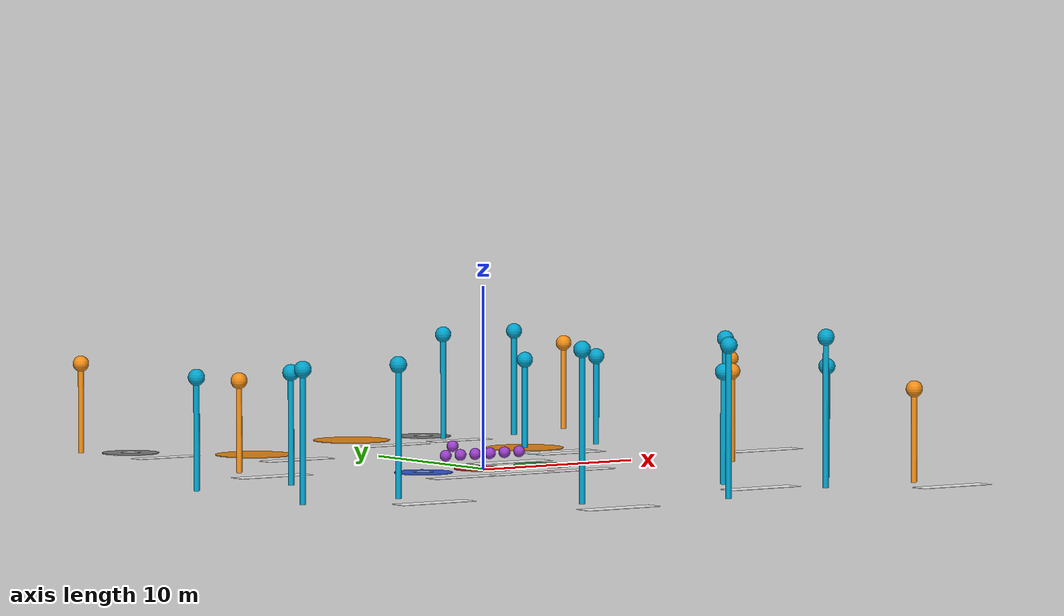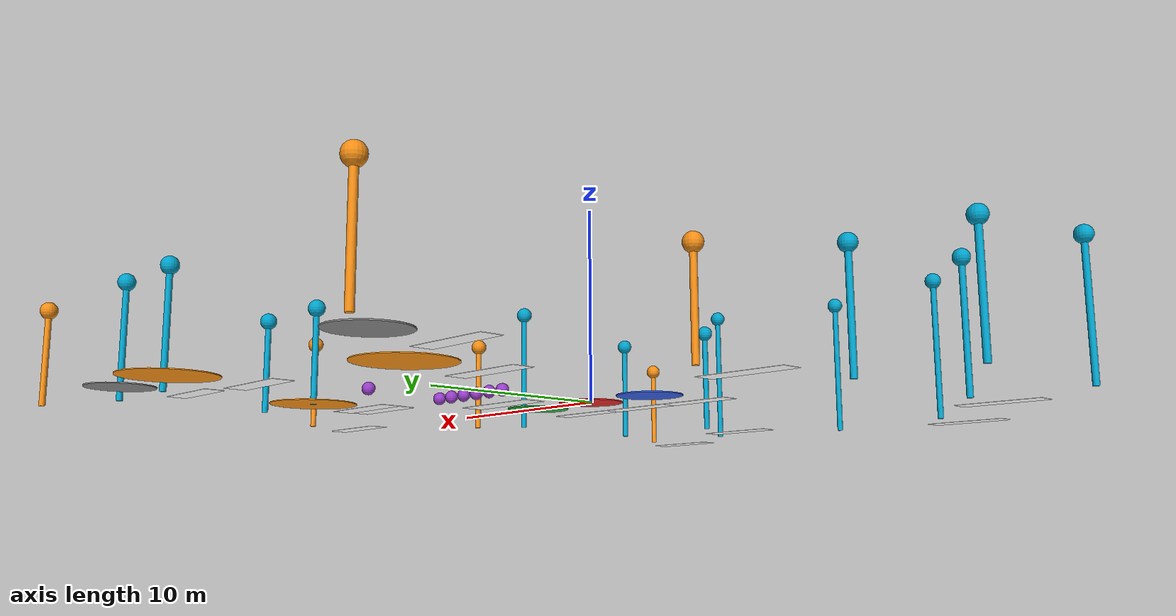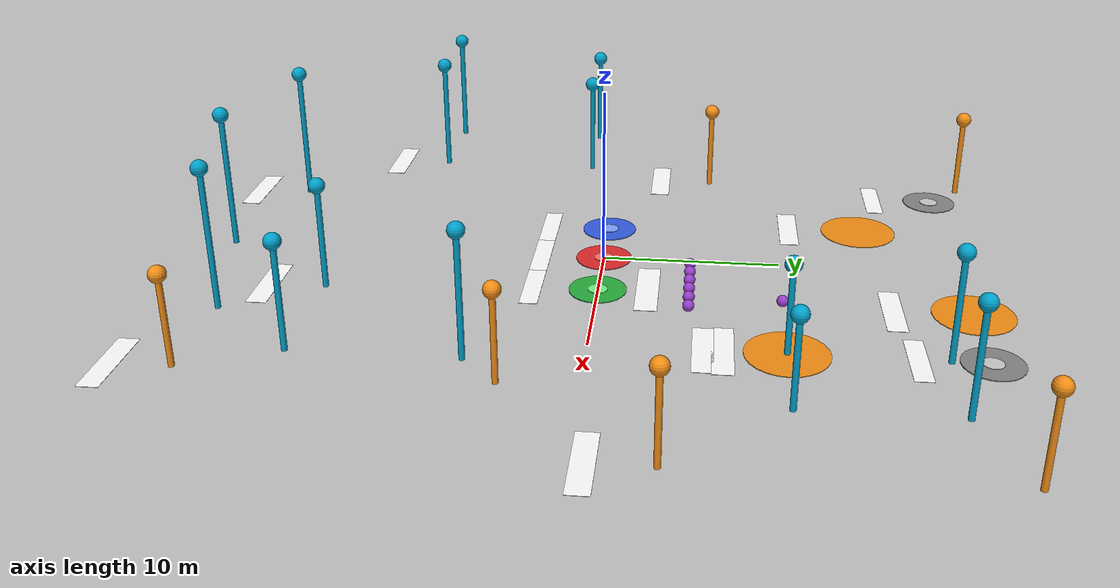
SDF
<?xml version="1.0" ?>
<!-- GENERATED by scripts/gen_mission_labels.py - do not edit by hand.
     Regenerate after changing config/mission.yaml or config/conf.yaml. -->
<sdf version="1.8">
  <model name="mission_labels">
    <static>true</static>
    <link name="pad_drone0">
      <pose>0.000 0.000 0.030 0 0 0</pose>
      <visual name="v">
        <cast_shadows>false</cast_shadows>
        <geometry><cylinder><radius>1.600</radius><length>0.050</length></cylinder></geometry>
        <material>
          <ambient>0.863 0.157 0.157 1.00</ambient>
          <diffuse>0.863 0.157 0.157 1.00</diffuse>
          <emissive>0.302 0.055 0.055 1</emissive>
        </material>
      </visual>
    </link>
    <link name="pad_in_drone0">
      <pose>0.000 0.000 0.050 0 0 0</pose>
      <visual name="v">
        <cast_shadows>false</cast_shadows>
        <geometry><cylinder><radius>0.550</radius><length>0.060</length></cylinder></geometry>
        <material>
          <ambient>1.000 0.431 0.431 1.00</ambient>
          <diffuse>1.000 0.431 0.431 1.00</diffuse>
          <emissive>0.350 0.151 0.151 1</emissive>
        </material>
      </visual>
    </link>
    <link name="lbl_base_drone0">
      <pose>0.000 -3.600 0.030 0 0 0.0000</pose>
      <visual name="v">
        <cast_shadows>false</cast_shadows>
        <geometry><box><size>4.000 1.000 0.02</size></box></geometry>
        <material>
          <ambient>1 1 1 1</ambient><diffuse>1 1 1 1</diffuse>
          <pbr><metal>
            <albedo_map>model://mission_labels/materials/textures/base_drone0.png</albedo_map>
            <metalness>0.0</metalness><roughness>1.0</roughness>
          </metal></pbr>
        </material>
      </visual>
    </link>
    <link name="pad_drone1">
      <pose>4.000 0.000 0.030 0 0 0</pose>
      <visual name="v">
        <cast_shadows>false</cast_shadows>
        <geometry><cylinder><radius>1.600</radius><length>0.050</length></cylinder></geometry>
        <material>
          <ambient>0.157 0.667 0.235 1.00</ambient>
          <diffuse>0.157 0.667 0.235 1.00</diffuse>
          <emissive>0.055 0.233 0.082 1</emissive>
        </material>
      </visual>
    </link>
    <link name="pad_in_drone1">
      <pose>4.000 0.000 0.050 0 0 0</pose>
      <visual name="v">
        <cast_shadows>false</cast_shadows>
        <geometry><cylinder><radius>0.550</radius><length>0.060</length></cylinder></geometry>
        <material>
          <ambient>0.431 0.941 0.510 1.00</ambient>
          <diffuse>0.431 0.941 0.510 1.00</diffuse>
          <emissive>0.151 0.329 0.178 1</emissive>
        </material>
      </visual>
    </link>
    <link name="lbl_base_drone1">
      <pose>4.000 -3.600 0.030 0 0 0.0000</pose>
      <visual name="v">
        <cast_shadows>false</cast_shadows>
        <geometry><box><size>4.000 1.000 0.02</size></box></geometry>
        <material>
          <ambient>1 1 1 1</ambient><diffuse>1 1 1 1</diffuse>
          <pbr><metal>
            <albedo_map>model://mission_labels/materials/textures/base_drone1.png</albedo_map>
            <metalness>0.0</metalness><roughness>1.0</roughness>
          </metal></pbr>
        </material>
      </visual>
    </link>
    <link name="pad_drone2">
      <pose>-4.000 0.000 0.030 0 0 0</pose>
      <visual name="v">
        <cast_shadows>false</cast_shadows>
        <geometry><cylinder><radius>1.600</radius><length>0.050</length></cylinder></geometry>
        <material>
          <ambient>0.196 0.353 0.863 1.00</ambient>
          <diffuse>0.196 0.353 0.863 1.00</diffuse>
          <emissive>0.069 0.124 0.302 1</emissive>
        </material>
      </visual>
    </link>
    <link name="pad_in_drone2">
      <pose>-4.000 0.000 0.050 0 0 0</pose>
      <visual name="v">
        <cast_shadows>false</cast_shadows>
        <geometry><cylinder><radius>0.550</radius><length>0.060</length></cylinder></geometry>
        <material>
          <ambient>0.471 0.627 1.000 1.00</ambient>
          <diffuse>0.471 0.627 1.000 1.00</diffuse>
          <emissive>0.165 0.220 0.350 1</emissive>
        </material>
      </visual>
    </link>
    <link name="lbl_base_drone2">
      <pose>-4.000 -3.600 0.030 0 0 0.0000</pose>
      <visual name="v">
        <cast_shadows>false</cast_shadows>
        <geometry><box><size>4.000 1.000 0.02</size></box></geometry>
        <material>
          <ambient>1 1 1 1</ambient><diffuse>1 1 1 1</diffuse>
          <pbr><metal>
            <albedo_map>model://mission_labels/materials/textures/base_drone2.png</albedo_map>
            <metalness>0.0</metalness><roughness>1.0</roughness>
          </metal></pbr>
        </material>
      </visual>
    </link>
    <link name="pad_4">
      <pose>-10.000 20.000 0.030 0 0 0</pose>
      <visual name="v">
        <cast_shadows>false</cast_shadows>
        <geometry><cylinder><radius>1.600</radius><length>0.050</length></cylinder></geometry>
        <material>
          <ambient>0.510 0.510 0.510 1.00</ambient>
          <diffuse>0.510 0.510 0.510 1.00</diffuse>
          <emissive>0.178 0.178 0.178 1</emissive>
        </material>
      </visual>
    </link>
    <link name="pad_in_4">
      <pose>-10.000 20.000 0.050 0 0 0</pose>
      <visual name="v">
        <cast_shadows>false</cast_shadows>
        <geometry><cylinder><radius>0.550</radius><length>0.060</length></cylinder></geometry>
        <material>
          <ambient>0.784 0.784 0.784 1.00</ambient>
          <diffuse>0.784 0.784 0.784 1.00</diffuse>
          <emissive>0.275 0.275 0.275 1</emissive>
        </material>
      </visual>
    </link>
    <link name="lbl_base_4">
      <pose>-10.000 16.400 0.030 0 0 0.0000</pose>
      <visual name="v">
        <cast_shadows>false</cast_shadows>
        <geometry><box><size>4.000 1.000 0.02</size></box></geometry>
        <material>
          <ambient>1 1 1 1</ambient><diffuse>1 1 1 1</diffuse>
          <pbr><metal>
            <albedo_map>model://mission_labels/materials/textures/base_4.png</albedo_map>
            <metalness>0.0</metalness><roughness>1.0</roughness>
          </metal></pbr>
        </material>
      </visual>
    </link>
    <link name="pad_5">
      <pose>10.000 20.000 0.030 0 0 0</pose>
      <visual name="v">
        <cast_shadows>false</cast_shadows>
        <geometry><cylinder><radius>1.600</radius><length>0.050</length></cylinder></geometry>
        <material>
          <ambient>0.510 0.510 0.510 1.00</ambient>
          <diffuse>0.510 0.510 0.510 1.00</diffuse>
          <emissive>0.178 0.178 0.178 1</emissive>
        </material>
      </visual>
    </link>
    <link name="pad_in_5">
      <pose>10.000 20.000 0.050 0 0 0</pose>
      <visual name="v">
        <cast_shadows>false</cast_shadows>
        <geometry><cylinder><radius>0.550</radius><length>0.060</length></cylinder></geometry>
        <material>
          <ambient>0.784 0.784 0.784 1.00</ambient>
          <diffuse>0.784 0.784 0.784 1.00</diffuse>
          <emissive>0.275 0.275 0.275 1</emissive>
        </material>
      </visual>
    </link>
    <link name="lbl_base_5">
      <pose>10.000 16.400 0.030 0 0 0.0000</pose>
      <visual name="v">
        <cast_shadows>false</cast_shadows>
        <geometry><box><size>4.000 1.000 0.02</size></box></geometry>
        <material>
          <ambient>1 1 1 1</ambient><diffuse>1 1 1 1</diffuse>
          <pbr><metal>
            <albedo_map>model://mission_labels/materials/textures/base_5.png</albedo_map>
            <metalness>0.0</metalness><roughness>1.0</roughness>
          </metal></pbr>
        </material>
      </visual>
    </link>
    <link name="ring_human_target_1">
      <pose>10.000 10.000 0.030 0 0 0</pose>
      <visual name="v">
        <cast_shadows>false</cast_shadows>
        <geometry><cylinder><radius>2.200</radius><length>0.040</length></cylinder></geometry>
        <material>
          <ambient>0.941 0.549 0.078 1.00</ambient>
          <diffuse>0.941 0.549 0.078 1.00</diffuse>
          <emissive>0.329 0.192 0.027 1</emissive>
        </material>
      </visual>
    </link>
    <link name="l_human_target_1">
      <pose>10.000 5.800 0.030 0 0 0.0000</pose>
      <visual name="v">
        <cast_shadows>false</cast_shadows>
        <geometry><box><size>4.400 1.100 0.02</size></box></geometry>
        <material>
          <ambient>1 1 1 1</ambient><diffuse>1 1 1 1</diffuse>
          <pbr><metal>
            <albedo_map>model://mission_labels/materials/textures/lbl_human_target_1.png</albedo_map>
            <metalness>0.0</metalness><roughness>1.0</roughness>
          </metal></pbr>
        </material>
      </visual>
    </link>
    <link name="ring_human_target_2">
      <pose>-5.000 15.000 0.030 0 0 0</pose>
      <visual name="v">
        <cast_shadows>false</cast_shadows>
        <geometry><cylinder><radius>2.200</radius><length>0.040</length></cylinder></geometry>
        <material>
          <ambient>0.941 0.549 0.078 1.00</ambient>
          <diffuse>0.941 0.549 0.078 1.00</diffuse>
          <emissive>0.329 0.192 0.027 1</emissive>
        </material>
      </visual>
    </link>
    <link name="l_human_target_2">
      <pose>-5.000 10.800 0.030 0 0 0.0000</pose>
      <visual name="v">
        <cast_shadows>false</cast_shadows>
        <geometry><box><size>4.400 1.100 0.02</size></box></geometry>
        <material>
          <ambient>1 1 1 1</ambient><diffuse>1 1 1 1</diffuse>
          <pbr><metal>
            <albedo_map>model://mission_labels/materials/textures/lbl_human_target_2.png</albedo_map>
            <metalness>0.0</metalness><roughness>1.0</roughness>
          </metal></pbr>
        </material>
      </visual>
    </link>
    <link name="ring_human_target_3">
      <pose>5.000 20.000 0.030 0 0 0</pose>
      <visual name="v">
        <cast_shadows>false</cast_shadows>
        <geometry><cylinder><radius>2.200</radius><length>0.040</length></cylinder></geometry>
        <material>
          <ambient>0.941 0.549 0.078 1.00</ambient>
          <diffuse>0.941 0.549 0.078 1.00</diffuse>
          <emissive>0.329 0.192 0.027 1</emissive>
        </material>
      </visual>
    </link>
    <link name="l_human_target_3">
      <pose>5.000 15.800 0.030 0 0 0.0000</pose>
      <visual name="v">
        <cast_shadows>false</cast_shadows>
        <geometry><box><size>4.400 1.100 0.02</size></box></geometry>
        <material>
          <ambient>1 1 1 1</ambient><diffuse>1 1 1 1</diffuse>
          <pbr><metal>
            <albedo_map>model://mission_labels/materials/textures/lbl_human_target_3.png</albedo_map>
            <metalness>0.0</metalness><roughness>1.0</roughness>
          </metal></pbr>
        </material>
      </visual>
    </link>
    <link name="tool_hammer">
      <pose>5.000 10.000 0.350 0 0 0</pose>
      <visual name="v">
        <cast_shadows>false</cast_shadows>
        <geometry><sphere><radius>0.320</radius></sphere></geometry>
        <material>
          <ambient>0.588 0.235 0.784 1.00</ambient>
          <diffuse>0.588 0.235 0.784 1.00</diffuse>
          <emissive>0.206 0.082 0.275 1</emissive>
        </material>
      </visual>
    </link>
    <link name="tool_wrench">
      <pose>1.000 5.000 0.350 0 0 0</pose>
      <visual name="v">
        <cast_shadows>false</cast_shadows>
        <geometry><sphere><radius>0.320</radius></sphere></geometry>
        <material>
          <ambient>0.588 0.235 0.784 1.00</ambient>
          <diffuse>0.588 0.235 0.784 1.00</diffuse>
          <emissive>0.206 0.082 0.275 1</emissive>
        </material>
      </visual>
    </link>
    <link name="tool_allen_wrench">
      <pose>2.000 5.000 0.350 0 0 0</pose>
      <visual name="v">
        <cast_shadows>false</cast_shadows>
        <geometry><sphere><radius>0.320</radius></sphere></geometry>
        <material>
          <ambient>0.588 0.235 0.784 1.00</ambient>
          <diffuse>0.588 0.235 0.784 1.00</diffuse>
          <emissive>0.206 0.082 0.275 1</emissive>
        </material>
      </visual>
    </link>
    <link name="tool_fixed_wrench">
      <pose>3.000 5.000 0.350 0 0 0</pose>
      <visual name="v">
        <cast_shadows>false</cast_shadows>
        <geometry><sphere><radius>0.320</radius></sphere></geometry>
        <material>
          <ambient>0.588 0.235 0.784 1.00</ambient>
          <diffuse>0.588 0.235 0.784 1.00</diffuse>
          <emissive>0.206 0.082 0.275 1</emissive>
        </material>
      </visual>
    </link>
    <link name="tool_multimeter">
      <pose>4.000 5.000 0.350 0 0 0</pose>
      <visual name="v">
        <cast_shadows>false</cast_shadows>
        <geometry><sphere><radius>0.320</radius></sphere></geometry>
        <material>
          <ambient>0.588 0.235 0.784 1.00</ambient>
          <diffuse>0.588 0.235 0.784 1.00</diffuse>
          <emissive>0.206 0.082 0.275 1</emissive>
        </material>
      </visual>
    </link>
    <link name="tool_pliers">
      <pose>5.000 5.000 0.350 0 0 0</pose>
      <visual name="v">
        <cast_shadows>false</cast_shadows>
        <geometry><sphere><radius>0.320</radius></sphere></geometry>
        <material>
          <ambient>0.588 0.235 0.784 1.00</ambient>
          <diffuse>0.588 0.235 0.784 1.00</diffuse>
          <emissive>0.206 0.082 0.275 1</emissive>
        </material>
      </visual>
    </link>
    <link name="tool_tweezers">
      <pose>6.000 5.000 0.350 0 0 0</pose>
      <visual name="v">
        <cast_shadows>false</cast_shadows>
        <geometry><sphere><radius>0.320</radius></sphere></geometry>
        <material>
          <ambient>0.588 0.235 0.784 1.00</ambient>
          <diffuse>0.588 0.235 0.784 1.00</diffuse>
          <emissive>0.206 0.082 0.275 1</emissive>
        </material>
      </visual>
    </link>
    <link name="l_tools">
      <pose>3.714 2.714 0.030 0 0 0.0000</pose>
      <visual name="v">
        <cast_shadows>false</cast_shadows>
        <geometry><box><size>5.000 1.250 0.02</size></box></geometry>
        <material>
          <ambient>1 1 1 1</ambient><diffuse>1 1 1 1</diffuse>
          <pbr><metal>
            <albedo_map>model://mission_labels/materials/textures/lbl_tools.png</albedo_map>
            <metalness>0.0</metalness><roughness>1.0</roughness>
          </metal></pbr>
        </material>
      </visual>
    </link>
    <link name="post_t_1_0">
      <pose>10.000 10.000 2.500 0 0 0</pose>
      <visual name="v">
        <cast_shadows>false</cast_shadows>
        <geometry><cylinder><radius>0.160</radius><length>5.000</length></cylinder></geometry>
        <material>
          <ambient>0.000 0.627 0.784 1.00</ambient>
          <diffuse>0.000 0.627 0.784 1.00</diffuse>
          <emissive>0.000 0.220 0.275 1</emissive>
        </material>
      </visual>
    </link>
    <link name="top_t_1_0">
      <pose>10.000 10.000 5.000 0 0 0</pose>
      <visual name="v">
        <cast_shadows>false</cast_shadows>
        <geometry><sphere><radius>0.450</radius></sphere></geometry>
        <material>
          <ambient>0.000 0.627 0.784 1.00</ambient>
          <diffuse>0.000 0.627 0.784 1.00</diffuse>
          <emissive>0.000 0.220 0.275 1</emissive>
        </material>
      </visual>
    </link>
    <link name="post_t_1_1">
      <pose>15.000 10.000 2.500 0 0 0</pose>
      <visual name="v">
        <cast_shadows>false</cast_shadows>
        <geometry><cylinder><radius>0.160</radius><length>5.000</length></cylinder></geometry>
        <material>
          <ambient>0.000 0.627 0.784 1.00</ambient>
          <diffuse>0.000 0.627 0.784 1.00</diffuse>
          <emissive>0.000 0.220 0.275 1</emissive>
        </material>
      </visual>
    </link>
    <link name="top_t_1_1">
      <pose>15.000 10.000 5.000 0 0 0</pose>
      <visual name="v">
        <cast_shadows>false</cast_shadows>
        <geometry><sphere><radius>0.450</radius></sphere></geometry>
        <material>
          <ambient>0.000 0.627 0.784 1.00</ambient>
          <diffuse>0.000 0.627 0.784 1.00</diffuse>
          <emissive>0.000 0.220 0.275 1</emissive>
        </material>
      </visual>
    </link>
    <link name="post_t_1_2">
      <pose>15.000 18.000 3.000 0 0 0</pose>
      <visual name="v">
        <cast_shadows>false</cast_shadows>
        <geometry><cylinder><radius>0.160</radius><length>6.000</length></cylinder></geometry>
        <material>
          <ambient>0.000 0.627 0.784 1.00</ambient>
          <diffuse>0.000 0.627 0.784 1.00</diffuse>
          <emissive>0.000 0.220 0.275 1</emissive>
        </material>
      </visual>
    </link>
    <link name="top_t_1_2">
      <pose>15.000 18.000 6.000 0 0 0</pose>
      <visual name="v">
        <cast_shadows>false</cast_shadows>
        <geometry><sphere><radius>0.450</radius></sphere></geometry>
        <material>
          <ambient>0.000 0.627 0.784 1.00</ambient>
          <diffuse>0.000 0.627 0.784 1.00</diffuse>
          <emissive>0.000 0.220 0.275 1</emissive>
        </material>
      </visual>
    </link>
    <link name="post_t_1_3">
      <pose>10.000 18.000 3.000 0 0 0</pose>
      <visual name="v">
        <cast_shadows>false</cast_shadows>
        <geometry><cylinder><radius>0.160</radius><length>6.000</length></cylinder></geometry>
        <material>
          <ambient>0.000 0.627 0.784 1.00</ambient>
          <diffuse>0.000 0.627 0.784 1.00</diffuse>
          <emissive>0.000 0.220 0.275 1</emissive>
        </material>
      </visual>
    </link>
    <link name="top_t_1_3">
      <pose>10.000 18.000 6.000 0 0 0</pose>
      <visual name="v">
        <cast_shadows>false</cast_shadows>
        <geometry><sphere><radius>0.450</radius></sphere></geometry>
        <material>
          <ambient>0.000 0.627 0.784 1.00</ambient>
          <diffuse>0.000 0.627 0.784 1.00</diffuse>
          <emissive>0.000 0.220 0.275 1</emissive>
        </material>
      </visual>
    </link>
    <link name="l_t_1">
      <pose>10.000 6.800 0.030 0 0 0.0000</pose>
      <visual name="v">
        <cast_shadows>false</cast_shadows>
        <geometry><box><size>4.600 1.150 0.02</size></box></geometry>
        <material>
          <ambient>1 1 1 1</ambient><diffuse>1 1 1 1</diffuse>
          <pbr><metal>
            <albedo_map>model://mission_labels/materials/textures/lbl_t_1.png</albedo_map>
            <metalness>0.0</metalness><roughness>1.0</roughness>
          </metal></pbr>
        </material>
      </visual>
    </link>
    <link name="post_t_2_0">
      <pose>-12.000 6.000 2.500 0 0 0</pose>
      <visual name="v">
        <cast_shadows>false</cast_shadows>
        <geometry><cylinder><radius>0.160</radius><length>5.000</length></cylinder></geometry>
        <material>
          <ambient>0.941 0.549 0.078 1.00</ambient>
          <diffuse>0.941 0.549 0.078 1.00</diffuse>
          <emissive>0.329 0.192 0.027 1</emissive>
        </material>
      </visual>
    </link>
    <link name="top_t_2_0">
      <pose>-12.000 6.000 5.000 0 0 0</pose>
      <visual name="v">
        <cast_shadows>false</cast_shadows>
        <geometry><sphere><radius>0.450</radius></sphere></geometry>
        <material>
          <ambient>0.941 0.549 0.078 1.00</ambient>
          <diffuse>0.941 0.549 0.078 1.00</diffuse>
          <emissive>0.329 0.192 0.027 1</emissive>
        </material>
      </visual>
    </link>
    <link name="post_t_2_1">
      <pose>-12.000 22.000 2.500 0 0 0</pose>
      <visual name="v">
        <cast_shadows>false</cast_shadows>
        <geometry><cylinder><radius>0.160</radius><length>5.000</length></cylinder></geometry>
        <material>
          <ambient>0.941 0.549 0.078 1.00</ambient>
          <diffuse>0.941 0.549 0.078 1.00</diffuse>
          <emissive>0.329 0.192 0.027 1</emissive>
        </material>
      </visual>
    </link>
    <link name="top_t_2_1">
      <pose>-12.000 22.000 5.000 0 0 0</pose>
      <visual name="v">
        <cast_shadows>false</cast_shadows>
        <geometry><sphere><radius>0.450</radius></sphere></geometry>
        <material>
          <ambient>0.941 0.549 0.078 1.00</ambient>
          <diffuse>0.941 0.549 0.078 1.00</diffuse>
          <emissive>0.329 0.192 0.027 1</emissive>
        </material>
      </visual>
    </link>
    <link name="l_t_2">
      <pose>-12.000 2.800 0.030 0 0 0.0000</pose>
      <visual name="v">
        <cast_shadows>false</cast_shadows>
        <geometry><box><size>4.600 1.150 0.02</size></box></geometry>
        <material>
          <ambient>1 1 1 1</ambient><diffuse>1 1 1 1</diffuse>
          <pbr><metal>
            <albedo_map>model://mission_labels/materials/textures/lbl_t_2.png</albedo_map>
            <metalness>0.0</metalness><roughness>1.0</roughness>
          </metal></pbr>
        </material>
      </visual>
    </link>
    <link name="post_t_4_0">
      <pose>5.000 -15.000 3.000 0 0 0</pose>
      <visual name="v">
        <cast_shadows>false</cast_shadows>
        <geometry><cylinder><radius>0.160</radius><length>6.000</length></cylinder></geometry>
        <material>
          <ambient>0.000 0.627 0.784 1.00</ambient>
          <diffuse>0.000 0.627 0.784 1.00</diffuse>
          <emissive>0.000 0.220 0.275 1</emissive>
        </material>
      </visual>
    </link>
    <link name="top_t_4_0">
      <pose>5.000 -15.000 6.000 0 0 0</pose>
      <visual name="v">
        <cast_shadows>false</cast_shadows>
        <geometry><sphere><radius>0.450</radius></sphere></geometry>
        <material>
          <ambient>0.000 0.627 0.784 1.00</ambient>
          <diffuse>0.000 0.627 0.784 1.00</diffuse>
          <emissive>0.000 0.220 0.275 1</emissive>
        </material>
      </visual>
    </link>
    <link name="post_t_4_1">
      <pose>12.000 -15.000 3.000 0 0 0</pose>
      <visual name="v">
        <cast_shadows>false</cast_shadows>
        <geometry><cylinder><radius>0.160</radius><length>6.000</length></cylinder></geometry>
        <material>
          <ambient>0.000 0.627 0.784 1.00</ambient>
          <diffuse>0.000 0.627 0.784 1.00</diffuse>
          <emissive>0.000 0.220 0.275 1</emissive>
        </material>
      </visual>
    </link>
    <link name="top_t_4_1">
      <pose>12.000 -15.000 6.000 0 0 0</pose>
      <visual name="v">
        <cast_shadows>false</cast_shadows>
        <geometry><sphere><radius>0.450</radius></sphere></geometry>
        <material>
          <ambient>0.000 0.627 0.784 1.00</ambient>
          <diffuse>0.000 0.627 0.784 1.00</diffuse>
          <emissive>0.000 0.220 0.275 1</emissive>
        </material>
      </visual>
    </link>
    <link name="post_t_4_2">
      <pose>12.000 -6.000 3.500 0 0 0</pose>
      <visual name="v">
        <cast_shadows>false</cast_shadows>
        <geometry><cylinder><radius>0.160</radius><length>7.000</length></cylinder></geometry>
        <material>
          <ambient>0.000 0.627 0.784 1.00</ambient>
          <diffuse>0.000 0.627 0.784 1.00</diffuse>
          <emissive>0.000 0.220 0.275 1</emissive>
        </material>
      </visual>
    </link>
    <link name="top_t_4_2">
      <pose>12.000 -6.000 7.000 0 0 0</pose>
      <visual name="v">
        <cast_shadows>false</cast_shadows>
        <geometry><sphere><radius>0.450</radius></sphere></geometry>
        <material>
          <ambient>0.000 0.627 0.784 1.00</ambient>
          <diffuse>0.000 0.627 0.784 1.00</diffuse>
          <emissive>0.000 0.220 0.275 1</emissive>
        </material>
      </visual>
    </link>
    <link name="l_t_4">
      <pose>5.000 -18.200 0.030 0 0 0.0000</pose>
      <visual name="v">
        <cast_shadows>false</cast_shadows>
        <geometry><box><size>4.600 1.150 0.02</size></box></geometry>
        <material>
          <ambient>1 1 1 1</ambient><diffuse>1 1 1 1</diffuse>
          <pbr><metal>
            <albedo_map>model://mission_labels/materials/textures/lbl_t_4.png</albedo_map>
            <metalness>0.0</metalness><roughness>1.0</roughness>
          </metal></pbr>
        </material>
      </visual>
    </link>
    <link name="post_t_6_0">
      <pose>14.000 -20.000 2.500 0 0 0</pose>
      <visual name="v">
        <cast_shadows>false</cast_shadows>
        <geometry><cylinder><radius>0.160</radius><length>5.000</length></cylinder></geometry>
        <material>
          <ambient>0.941 0.549 0.078 1.00</ambient>
          <diffuse>0.941 0.549 0.078 1.00</diffuse>
          <emissive>0.329 0.192 0.027 1</emissive>
        </material>
      </visual>
    </link>
    <link name="top_t_6_0">
      <pose>14.000 -20.000 5.000 0 0 0</pose>
      <visual name="v">
        <cast_shadows>false</cast_shadows>
        <geometry><sphere><radius>0.450</radius></sphere></geometry>
        <material>
          <ambient>0.941 0.549 0.078 1.00</ambient>
          <diffuse>0.941 0.549 0.078 1.00</diffuse>
          <emissive>0.329 0.192 0.027 1</emissive>
        </material>
      </visual>
    </link>
    <link name="post_t_6_1">
      <pose>14.000 -4.000 2.500 0 0 0</pose>
      <visual name="v">
        <cast_shadows>false</cast_shadows>
        <geometry><cylinder><radius>0.160</radius><length>5.000</length></cylinder></geometry>
        <material>
          <ambient>0.941 0.549 0.078 1.00</ambient>
          <diffuse>0.941 0.549 0.078 1.00</diffuse>
          <emissive>0.329 0.192 0.027 1</emissive>
        </material>
      </visual>
    </link>
    <link name="top_t_6_1">
      <pose>14.000 -4.000 5.000 0 0 0</pose>
      <visual name="v">
        <cast_shadows>false</cast_shadows>
        <geometry><sphere><radius>0.450</radius></sphere></geometry>
        <material>
          <ambient>0.941 0.549 0.078 1.00</ambient>
          <diffuse>0.941 0.549 0.078 1.00</diffuse>
          <emissive>0.329 0.192 0.027 1</emissive>
        </material>
      </visual>
    </link>
    <link name="l_t_6">
      <pose>14.000 -23.200 0.030 0 0 0.0000</pose>
      <visual name="v">
        <cast_shadows>false</cast_shadows>
        <geometry><box><size>4.600 1.150 0.02</size></box></geometry>
        <material>
          <ambient>1 1 1 1</ambient><diffuse>1 1 1 1</diffuse>
          <pbr><metal>
            <albedo_map>model://mission_labels/materials/textures/lbl_t_6.png</albedo_map>
            <metalness>0.0</metalness><roughness>1.0</roughness>
          </metal></pbr>
        </material>
      </visual>
    </link>
    <link name="post_t_7_0">
      <pose>-14.000 -12.000 3.500 0 0 0</pose>
      <visual name="v">
        <cast_shadows>false</cast_shadows>
        <geometry><cylinder><radius>0.160</radius><length>7.000</length></cylinder></geometry>
        <material>
          <ambient>0.000 0.627 0.784 1.00</ambient>
          <diffuse>0.000 0.627 0.784 1.00</diffuse>
          <emissive>0.000 0.220 0.275 1</emissive>
        </material>
      </visual>
    </link>
    <link name="top_t_7_0">
      <pose>-14.000 -12.000 7.000 0 0 0</pose>
      <visual name="v">
        <cast_shadows>false</cast_shadows>
        <geometry><sphere><radius>0.450</radius></sphere></geometry>
        <material>
          <ambient>0.000 0.627 0.784 1.00</ambient>
          <diffuse>0.000 0.627 0.784 1.00</diffuse>
          <emissive>0.000 0.220 0.275 1</emissive>
        </material>
      </visual>
    </link>
    <link name="post_t_7_1">
      <pose>-20.000 -12.000 3.500 0 0 0</pose>
      <visual name="v">
        <cast_shadows>false</cast_shadows>
        <geometry><cylinder><radius>0.160</radius><length>7.000</length></cylinder></geometry>
        <material>
          <ambient>0.000 0.627 0.784 1.00</ambient>
          <diffuse>0.000 0.627 0.784 1.00</diffuse>
          <emissive>0.000 0.220 0.275 1</emissive>
        </material>
      </visual>
    </link>
    <link name="top_t_7_1">
      <pose>-20.000 -12.000 7.000 0 0 0</pose>
      <visual name="v">
        <cast_shadows>false</cast_shadows>
        <geometry><sphere><radius>0.450</radius></sphere></geometry>
        <material>
          <ambient>0.000 0.627 0.784 1.00</ambient>
          <diffuse>0.000 0.627 0.784 1.00</diffuse>
          <emissive>0.000 0.220 0.275 1</emissive>
        </material>
      </visual>
    </link>
    <link name="post_t_7_2">
      <pose>-20.000 -2.000 3.000 0 0 0</pose>
      <visual name="v">
        <cast_shadows>false</cast_shadows>
        <geometry><cylinder><radius>0.160</radius><length>6.000</length></cylinder></geometry>
        <material>
          <ambient>0.000 0.627 0.784 1.00</ambient>
          <diffuse>0.000 0.627 0.784 1.00</diffuse>
          <emissive>0.000 0.220 0.275 1</emissive>
        </material>
      </visual>
    </link>
    <link name="top_t_7_2">
      <pose>-20.000 -2.000 6.000 0 0 0</pose>
      <visual name="v">
        <cast_shadows>false</cast_shadows>
        <geometry><sphere><radius>0.450</radius></sphere></geometry>
        <material>
          <ambient>0.000 0.627 0.784 1.00</ambient>
          <diffuse>0.000 0.627 0.784 1.00</diffuse>
          <emissive>0.000 0.220 0.275 1</emissive>
        </material>
      </visual>
    </link>
    <link name="post_t_7_3">
      <pose>-14.000 -2.000 3.000 0 0 0</pose>
      <visual name="v">
        <cast_shadows>false</cast_shadows>
        <geometry><cylinder><radius>0.160</radius><length>6.000</length></cylinder></geometry>
        <material>
          <ambient>0.000 0.627 0.784 1.00</ambient>
          <diffuse>0.000 0.627 0.784 1.00</diffuse>
          <emissive>0.000 0.220 0.275 1</emissive>
        </material>
      </visual>
    </link>
    <link name="top_t_7_3">
      <pose>-14.000 -2.000 6.000 0 0 0</pose>
      <visual name="v">
        <cast_shadows>false</cast_shadows>
        <geometry><sphere><radius>0.450</radius></sphere></geometry>
        <material>
          <ambient>0.000 0.627 0.784 1.00</ambient>
          <diffuse>0.000 0.627 0.784 1.00</diffuse>
          <emissive>0.000 0.220 0.275 1</emissive>
        </material>
      </visual>
    </link>
    <link name="l_t_7">
      <pose>-14.000 -15.200 0.030 0 0 0.0000</pose>
      <visual name="v">
        <cast_shadows>false</cast_shadows>
        <geometry><box><size>4.600 1.150 0.02</size></box></geometry>
        <material>
          <ambient>1 1 1 1</ambient><diffuse>1 1 1 1</diffuse>
          <pbr><metal>
            <albedo_map>model://mission_labels/materials/textures/lbl_t_7.png</albedo_map>
            <metalness>0.0</metalness><roughness>1.0</roughness>
          </metal></pbr>
        </material>
      </visual>
    </link>
    <link name="post_t_10_0">
      <pose>20.000 4.000 2.500 0 0 0</pose>
      <visual name="v">
        <cast_shadows>false</cast_shadows>
        <geometry><cylinder><radius>0.160</radius><length>5.000</length></cylinder></geometry>
        <material>
          <ambient>0.941 0.549 0.078 1.00</ambient>
          <diffuse>0.941 0.549 0.078 1.00</diffuse>
          <emissive>0.329 0.192 0.027 1</emissive>
        </material>
      </visual>
    </link>
    <link name="top_t_10_0">
      <pose>20.000 4.000 5.000 0 0 0</pose>
      <visual name="v">
        <cast_shadows>false</cast_shadows>
        <geometry><sphere><radius>0.450</radius></sphere></geometry>
        <material>
          <ambient>0.941 0.549 0.078 1.00</ambient>
          <diffuse>0.941 0.549 0.078 1.00</diffuse>
          <emissive>0.329 0.192 0.027 1</emissive>
        </material>
      </visual>
    </link>
    <link name="post_t_10_1">
      <pose>20.000 20.000 2.500 0 0 0</pose>
      <visual name="v">
        <cast_shadows>false</cast_shadows>
        <geometry><cylinder><radius>0.160</radius><length>5.000</length></cylinder></geometry>
        <material>
          <ambient>0.941 0.549 0.078 1.00</ambient>
          <diffuse>0.941 0.549 0.078 1.00</diffuse>
          <emissive>0.329 0.192 0.027 1</emissive>
        </material>
      </visual>
    </link>
    <link name="top_t_10_1">
      <pose>20.000 20.000 5.000 0 0 0</pose>
      <visual name="v">
        <cast_shadows>false</cast_shadows>
        <geometry><sphere><radius>0.450</radius></sphere></geometry>
        <material>
          <ambient>0.941 0.549 0.078 1.00</ambient>
          <diffuse>0.941 0.549 0.078 1.00</diffuse>
          <emissive>0.329 0.192 0.027 1</emissive>
        </material>
      </visual>
    </link>
    <link name="l_t_10">
      <pose>20.000 0.800 0.030 0 0 0.0000</pose>
      <visual name="v">
        <cast_shadows>false</cast_shadows>
        <geometry><box><size>4.600 1.150 0.02</size></box></geometry>
        <material>
          <ambient>1 1 1 1</ambient><diffuse>1 1 1 1</diffuse>
          <pbr><metal>
            <albedo_map>model://mission_labels/materials/textures/lbl_t_10.png</albedo_map>
            <metalness>0.0</metalness><roughness>1.0</roughness>
          </metal></pbr>
        </material>
      </visual>
    </link>
    <link name="post_t_11_0">
      <pose>-8.000 -20.000 4.000 0 0 0</pose>
      <visual name="v">
        <cast_shadows>false</cast_shadows>
        <geometry><cylinder><radius>0.160</radius><length>8.000</length></cylinder></geometry>
        <material>
          <ambient>0.000 0.627 0.784 1.00</ambient>
          <diffuse>0.000 0.627 0.784 1.00</diffuse>
          <emissive>0.000 0.220 0.275 1</emissive>
        </material>
      </visual>
    </link>
    <link name="top_t_11_0">
      <pose>-8.000 -20.000 8.000 0 0 0</pose>
      <visual name="v">
        <cast_shadows>false</cast_shadows>
        <geometry><sphere><radius>0.450</radius></sphere></geometry>
        <material>
          <ambient>0.000 0.627 0.784 1.00</ambient>
          <diffuse>0.000 0.627 0.784 1.00</diffuse>
          <emissive>0.000 0.220 0.275 1</emissive>
        </material>
      </visual>
    </link>
    <link name="post_t_11_1">
      <pose>0.000 -22.000 4.000 0 0 0</pose>
      <visual name="v">
        <cast_shadows>false</cast_shadows>
        <geometry><cylinder><radius>0.160</radius><length>8.000</length></cylinder></geometry>
        <material>
          <ambient>0.000 0.627 0.784 1.00</ambient>
          <diffuse>0.000 0.627 0.784 1.00</diffuse>
          <emissive>0.000 0.220 0.275 1</emissive>
        </material>
      </visual>
    </link>
    <link name="top_t_11_1">
      <pose>0.000 -22.000 8.000 0 0 0</pose>
      <visual name="v">
        <cast_shadows>false</cast_shadows>
        <geometry><sphere><radius>0.450</radius></sphere></geometry>
        <material>
          <ambient>0.000 0.627 0.784 1.00</ambient>
          <diffuse>0.000 0.627 0.784 1.00</diffuse>
          <emissive>0.000 0.220 0.275 1</emissive>
        </material>
      </visual>
    </link>
    <link name="post_t_11_2">
      <pose>8.000 -20.000 4.000 0 0 0</pose>
      <visual name="v">
        <cast_shadows>false</cast_shadows>
        <geometry><cylinder><radius>0.160</radius><length>8.000</length></cylinder></geometry>
        <material>
          <ambient>0.000 0.627 0.784 1.00</ambient>
          <diffuse>0.000 0.627 0.784 1.00</diffuse>
          <emissive>0.000 0.220 0.275 1</emissive>
        </material>
      </visual>
    </link>
    <link name="top_t_11_2">
      <pose>8.000 -20.000 8.000 0 0 0</pose>
      <visual name="v">
        <cast_shadows>false</cast_shadows>
        <geometry><sphere><radius>0.450</radius></sphere></geometry>
        <material>
          <ambient>0.000 0.627 0.784 1.00</ambient>
          <diffuse>0.000 0.627 0.784 1.00</diffuse>
          <emissive>0.000 0.220 0.275 1</emissive>
        </material>
      </visual>
    </link>
    <link name="l_t_11">
      <pose>-8.000 -23.200 0.030 0 0 0.0000</pose>
      <visual name="v">
        <cast_shadows>false</cast_shadows>
        <geometry><box><size>4.600 1.150 0.02</size></box></geometry>
        <material>
          <ambient>1 1 1 1</ambient><diffuse>1 1 1 1</diffuse>
          <pbr><metal>
            <albedo_map>model://mission_labels/materials/textures/lbl_t_11.png</albedo_map>
            <metalness>0.0</metalness><roughness>1.0</roughness>
          </metal></pbr>
        </material>
      </visual>
    </link>
  </model>
</sdf>
